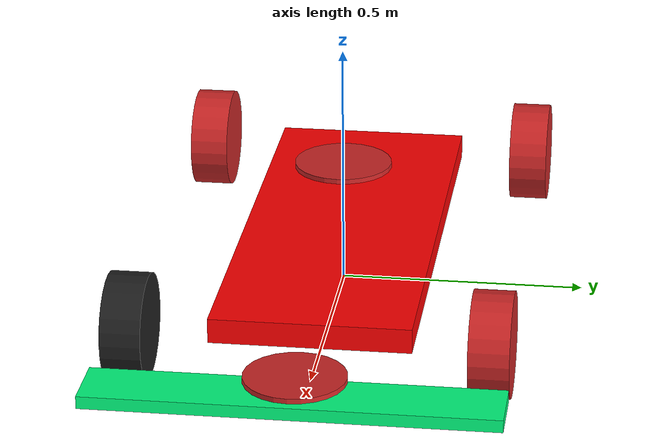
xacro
<?xml version="1.0"?>
<robot name="ap4_gokart" xmlns:xacro="http://ros.org/wiki/xacro">

 <!-- Include chassi body, wheel and steering information urdf file -->
 <!-- Parameters for the gokart chassis can be changed inside this file -->
   <xacro:include filename="$(find autonomous_platform_robot_description_pkg)/src/description/simple_digital_twin.urdf.xacro"/>

  <!-- Ackermann steering control for simulation of AP4 -->

 <xacro:include filename="control_simple_digital_twin.xacro"/>
  <xacro:include filename="lidar.xacro"/>
  <xacro:include filename="imu.xacro"/>

  <!-- TODO add sensors and such here from seperate files-->

</robot>

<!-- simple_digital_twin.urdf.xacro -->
<robot xmlns:xacro="http://ros.org/wiki/xacro" name="ackermann_steering_robot">
  <xacro:include filename="$(find autonomous_platform_robot_description_pkg)/src/description/inertia_macros.xacro"/>

  <link name="base_footprint">
  </link>

  <material name="custom_red">
    <ambient rgba="1.0 0.0 0.0 1.0"/> <!-- Red color -->
    <diffuse rgba="1.0 0.0 0.0 1.0"/> <!-- Red color -->
    <specular rgba="0.1 0.1 0.1 1.0"/> <!-- Slight reflection -->
  </material>

   <!-- Define robot constants -->
  <xacro:property name="base_width" value="0.4"/>
  <xacro:property name="base_length" value="1.02"/>
  <xacro:property name="base_height" value="0.05"/>

  <!-- params -->
  <xacro:property name="wheel_radius" value="0.105"/>
  <xacro:property name="wheel_width" value="0.080"/>
  <xacro:property name="y_offset" value="${base_width/2 + 0.155}"/>

  <!-- Gokart front wing parameters - As of now simplified to a slab -->
  <xacro:property name="gokart_frontwing_width" value="0.8"/>
  <xacro:property name="gokart_frontwing_length" value="0.125"/>
  <xacro:property name="gokart_frontwing_height" value="0.025"/>
  <xacro:property name="gokart_frontwing_body_xoff" value="0.16"/>

  <!-- weights -->
  <xacro:property name="wheel_weight" value="1.5"/>
  <xacro:property name="chassi_body_weight" value="50.0"/>
  <xacro:property name="frontwing_weight" value="20.0"/>

  <!-- Base link -->
  <link name="base_link">
    <visual>
      <geometry>
        <box size="${base_length} ${base_width} ${base_height}"/>
      </geometry>
      <material name="Red">
          <color rgba="1.0 0.0 0.0 1.0"/>
        </material>
    </visual>

    <collision>
      <geometry>
        <box size="1 0.5 0.1"/>
      </geometry>
    </collision>

    <xacro:inertial_box mass="${chassi_body_weight}" x="1" y="0.5" z="0.1">
      <origin xyz="0.0 0.0 0.0" rpy="0.0 0.0 0.0"/>
    </xacro:inertial_box>

  </link>

  <joint name="base_joint" type="fixed">
    <parent link="base_footprint"/>
    <child link="base_link"/>
    <origin xyz="0.0 0.0 0.1" rpy="0 0 0"/>
  </joint>

  <!-- Steering joints -->
  <joint name="left_steering_joint" type="revolute">
    <parent link="base_link"/>
    <child link="left_swivel"/>
    <origin xyz="0.5 ${y_offset} 0.0" rpy="0 0  0"/>
    <axis xyz="0 0 1"/> <!-- Rotate around the Y-axis (steering axis) -->
    <limit effort="100" lower="${-pi/5}" upper="${pi/5}" velocity="5" />
  </joint>

  <joint name="right_steering_joint" type="revolute">
    <parent link="base_link"/>
    <child link="right_swivel"/>
    <origin xyz="0.5 ${-y_offset} 0.0" rpy="0 0 0"/>
    <axis xyz="0 0 1"/> <!-- Rotate around the Y-axis (steering axis) -->
    <limit effort="100" lower="${-pi/5}" upper="${pi/5}" velocity="5" />
  </joint>

   <!-- front wheel rotating joints -->
  <joint name="left_steering_rotating_joint" type="continuous">
    <parent link="left_swivel"/>
    <child link="left_wheel_steering"/>
    <origin xyz="0.0 0.0 0.0" rpy="0 0 0"/>
    <axis xyz="0 1 0"/> <!-- Rotate around the Y-axis (drive axis) -->
    <dynamics friction="0.1" damping="0.5" />
    <limit lower="${-pi}" upper="${pi}" effort="0.1" velocity="15" />
  </joint>

  <joint name="right_steering_rotating_joint" type="continuous">
    <parent link="right_swivel"/>
    <child link="right_wheel_steering"/>
    <origin xyz="-0.0 0.0 0.0" rpy="0 0 0"/>
    <axis xyz="0 1 0"/> <!-- Rotate around the Y-axis (drive axis) -->
    <dynamics friction="0.1" damping="0.5" />
    <limit lower="${-pi}" upper="${pi}" effort="0.1" velocity="15" />
  </joint>

  <!-- Drive joints -->
  <joint name="left_drive_joint" type="continuous">
    <parent link="base_link"/>
    <child link="left_wheel"/>
    <origin xyz="-0.5 ${y_offset} 0.0" rpy="0 0 0"/>
    <axis xyz="0 1 0"/> <!-- Rotate around the Y-axis (drive axis) -->
    <dynamics friction="0.1" damping="0.5" />
    <limit lower="${-pi}" upper="${pi}" effort="70" velocity="15" />
  </joint>

  <joint name="right_drive_joint" type="continuous">
    <parent link="base_link"/>
    <child link="right_wheel"/>
    <origin xyz="-0.5 ${-y_offset} 0.0" rpy="0 0 0"/>
    <axis xyz="0 1 0"/> <!-- Rotate around the Y-axis (drive axis) -->
    <dynamics friction="0.1" damping="0.5" />
    <limit lower="${-pi}" upper="${pi}" effort="70" velocity="15" />
  </joint>

  <!-- Steering swiwels -->
  <link name="left_swivel">
    <visual>
      <origin xyz="0 0 0" rpy="${pi/2} 0 0"/>
      <geometry>
        <cylinder radius="0.05" length="0.005"/>
      </geometry>
      <material name="custom_red"/>
    </visual>
    <collision>
      <origin xyz="0 0 0" rpy="${pi/2} 0 0"/>
      <geometry>
        <cylinder radius="0.05" length="0.005"/>
      </geometry>
    </collision>
    <xacro:inertial_cylinder mass="${wheel_weight}" length="0.005" radius="0.05">
      <origin xyz="0 0 0" rpy="${pi/2} 0 0"/>
    </xacro:inertial_cylinder>
  </link>

  <link name="right_swivel">
    <visual>
      <origin xyz="0 0 0" rpy="${pi/2} 0 0"/>
      <geometry>
        <cylinder radius="0.05" length="0.005"/>
      </geometry>
      <material name="custom_red"/>
    </visual>
    <collision>
      <origin xyz="0 0 0" rpy="${pi/2} 0 0"/>
      <geometry>
        <cylinder radius="0.05" length="0.005"/>
      </geometry>
    </collision>
    <xacro:inertial_cylinder mass="${wheel_weight}" length="0.005" radius="0.05">
      <origin xyz="0 0 0" rpy="${pi/2} 0 0"/>
    </xacro:inertial_cylinder>
  </link>

  <!-- Steering wheels -->
  <link name="left_wheel_steering">
    <visual>
      <origin xyz="0 0 0" rpy="${pi/2} 0 0"/>
      <geometry>
        <cylinder radius="${wheel_radius}" length="${wheel_width}"/>
      </geometry>
      <material name="custom_red"/>
    </visual>
    <collision>
      <origin xyz="0 0 0" rpy="${pi/2} 0 0"/>
      <geometry>
        <cylinder radius="${wheel_radius}" length="${wheel_width}"/>
      </geometry>
    </collision>
    <xacro:inertial_cylinder mass="${wheel_weight}" length="${wheel_width}" radius="${wheel_radius}">
      <origin xyz="0 0 0" rpy="${pi/2} 0 0"/>
    </xacro:inertial_cylinder>
  </link>

  <link name="right_wheel_steering">
    <visual>
      <origin xyz="0 0 0" rpy="${pi/2} 0 0"/>
      <geometry>
        <cylinder radius="${wheel_radius}" length="${wheel_width}"/>
      </geometry>
    </visual>
    <collision>
      <origin xyz="0 0 0" rpy="${pi/2} 0 0"/>
      <geometry>
        <cylinder radius="${wheel_radius}" length="${wheel_width}"/>
      </geometry>
    </collision>
    <xacro:inertial_cylinder mass="${wheel_weight}" length="${wheel_width}" radius="${wheel_radius}">
      <origin xyz="0 0 0" rpy="${pi/2} 0 0"/>
    </xacro:inertial_cylinder>

    <gazebo reference="right_wheel_steering">
      <material> Gazebo/Black </material>
    </gazebo>
  </link>

  <!-- Driving wheels -->
  <link name="left_wheel">
    <visual>
      <origin xyz="0 0 0" rpy="${pi/2} 0 0"/>
      <geometry>
        <cylinder radius="${wheel_radius}" length="${wheel_width}"/>
      </geometry>
      <material name="custom_red"/>
    </visual>
    <collision>
      <origin xyz="0 0 0" rpy="${pi/2} 0 0"/>
      <geometry>
        <cylinder radius="${wheel_radius}" length="${wheel_width}"/>
      </geometry>
    </collision>
    <xacro:inertial_cylinder mass="${wheel_weight}" length="${wheel_width}" radius="${wheel_radius}">
      <origin xyz="0 0 0" rpy="${pi/2} 0 0"/>
    </xacro:inertial_cylinder>
  </link>

  <link name="right_wheel">
    <visual>
      <origin xyz="0 0 0" rpy="${pi/2} 0 0"/>
      <geometry>
        <cylinder radius="${wheel_radius}" length="${wheel_width}"/>
      </geometry>
      <material name="custom_red"/>
    </visual>
    <collision>
      <origin xyz="0 0 0" rpy="${pi/2} 0 0"/>
      <geometry>
        <cylinder radius="${wheel_radius}" length="${wheel_width}"/>
      </geometry>
    </collision>
    <xacro:inertial_cylinder mass="${wheel_weight}" length="${wheel_width}" radius="${wheel_radius}">
      <origin xyz="0 0 0" rpy="${pi/2} 0 0"/>
    </xacro:inertial_cylinder>
  </link>

  <!-- Create frontwing link on which one would like to mount future sensors -->
  <link name="gokart_frontwing_link">
      <visual>
        <origin xyz="${gokart_frontwing_length/2} 0 0" rpy="0 0 0"/>
        <geometry>
             <box size="${gokart_frontwing_length} ${gokart_frontwing_width} ${gokart_frontwing_height}"/>
        </geometry>
        <material name="Green">
          <color rgba="0 1.0 0.5 1.0"/>
        </material>
      </visual>

      <collision>
        <origin xyz="${gokart_frontwing_length/2} 0 0" rpy="0 0 0"/>
        <geometry>
             <box size="${gokart_frontwing_length} ${gokart_frontwing_width} ${gokart_frontwing_height}"/>
        </geometry>
      </collision>

      <xacro:inertial_box mass="${frontwing_weight}" x="${gokart_frontwing_length}" y="${gokart_frontwing_width}" z="${gokart_frontwing_height}">
      <origin xyz="0.0 0.0 0.0" rpy="0.0 0.0 0.0"/>
    </xacro:inertial_box>
    </link>

  <!-- Create frontwing joint, mount the frontwing to the gokart body with a fixed joint -->
  <joint name="frontwing_joint" type="fixed">
      <parent link="base_link"/>
      <child link="gokart_frontwing_link"/>
      <origin xyz="${base_length/2+gokart_frontwing_body_xoff} 0 ${-gokart_frontwing_height}" rpy="0 0 0"/>
      <axis xyz="1 0 0"/>
  </joint>

</robot>

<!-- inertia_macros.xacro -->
<robot xmlns:xacro="http://ros.org/wiki/xacro">

 <!-- Taken from https://github.com/joshnewans/articubot_one/blob/d5aa5e9bc9039073c0d8fd7fe426e170be79c087/description/inertial_macros.xacro -->

<!-- Specify some standard inertial calculations https://en.wikipedia.org/wiki/List_of_moments_of_inertia -->
    <!-- These make use of xacro's mathematical functionality -->

    <xacro:macro name="inertial_sphere" params="mass radius *origin">
        <inertial>
            <xacro:insert_block name="origin"/>
            <mass value="${mass}" />
            <inertia ixx="${(2/5) * mass * (radius*radius)}" ixy="0.0" ixz="0.0"
                    iyy="${(2/5) * mass * (radius*radius)}" iyz="0.0"
                    izz="${(2/5) * mass * (radius*radius)}" />
        </inertial>
    </xacro:macro>

    <xacro:macro name="inertial_box" params="mass x y z *origin">
        <inertial>
            <xacro:insert_block name="origin"/>
            <mass value="${mass}" />
            <inertia ixx="${(1/12) * mass * (y*y+z*z)}" ixy="0.0" ixz="0.0"
                    iyy="${(1/12) * mass * (x*x+z*z)}" iyz="0.0"
                    izz="${(1/12) * mass * (x*x+y*y)}" />
        </inertial>
    </xacro:macro>

    <xacro:macro name="inertial_cylinder" params="mass length radius *origin">
        <inertial>
            <xacro:insert_block name="origin"/>
            <mass value="${mass}" />
            <inertia ixx="${(1/12) * mass * (3*radius*radius + length*length)}" ixy="0.0" ixz="0.0"
                    iyy="${(1/12) * mass * (3*radius*radius + length*length)}" iyz="0.0"
                    izz="${(1/2) * mass * (radius*radius)}" />
        </inertial>
    </xacro:macro>

</robot>

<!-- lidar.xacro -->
<robot xmlns:xacro="http://www.ros.org/wiki/xacro">

    <xacro:property name="lidar_length" value="0.01"/>
    <xacro:property name="lidar_radius" value="0.1"/>

    <link name="lidar_link">
    <visual>
      <geometry>
        <cylinder radius="${lidar_radius}" length="${lidar_length}"/>
      </geometry>
    </visual>

    <collision>
      <geometry>
        <cylinder radius="${lidar_radius}" length="${lidar_length}"/>
      </geometry>
    </collision>

    <xacro:inertial_cylinder mass="0.1" length="${lidar_length}" radius="${lidar_radius}" >
        <origin xyz="0 0 0" rpy="0 0 0"/>
      </xacro:inertial_cylinder>

  </link>

    <joint name="base_lidar_joint" type="fixed">
        <parent link="base_link"/>
        <child link="lidar_link"/>
        <origin xyz="0.701 0 ${lidar_length/2.0}" rpy="0 0 0"/>
    </joint>

    <gazebo reference="lidar_link">
        <material>Gazebo/Red</material>
        <color rgba="1.0 0.0 0.0 1.0"/>
        <sensor name="lidar_sensor" type="gpu_lidar">
            <pose>0 0 0 0 0 0</pose>
            <visualize>true</visualize>
            <update_rate>10.0</update_rate>
            <lidar>
                <scan>
                    <horizontal>
                        <samples>180</samples>
                        <min_angle>-1.771</min_angle>
                        <max_angle>1.771</max_angle>
                    </horizontal>
                </scan>
                <range>
                    <min>1.0</min>
                    <max>12</max>
                </range>
            </lidar>

            <topic>scan</topic>

            <gz_frame_id>lidar_link</gz_frame_id>
        </sensor>
    </gazebo>
</robot>

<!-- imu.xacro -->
<robot xmlns:xacro="http://www.ros.org/wiki/xacro">

    <xacro:property name="lidar_length" value="0.01"/>
    <xacro:property name="lidar_radius" value="0.1"/>

    <link name="imu_link">
    <visual>
      <geometry>
        <cylinder radius="${lidar_radius}" length="${lidar_length}"/>
      </geometry>
    </visual>

    <collision>
      <geometry>
        <cylinder radius="${lidar_radius}" length="${lidar_length}"/>
      </geometry>
    </collision>

    <xacro:inertial_cylinder mass="0.1" length="${lidar_length}" radius="${lidar_radius}" >
        <origin xyz="0 0 0" rpy="0 0 0"/>
      </xacro:inertial_cylinder>

  </link>

    <joint name="base_imu_joint" type="fixed">
        <parent link="base_link"/>
        <child link="imu_link"/>
        <origin xyz="0 0 ${0.1+0.05+lidar_length/2.0}" rpy="0 0 0"/>
    </joint>

    <gazebo reference="imu_link">
        <material>Gazebo/Red</material>
        <color rgba="1.0 0.0 0.0 1.0"/>
          <sensor name="imu_sensor" type="imu">
            <always_on>true</always_on>
            <update_rate>10</update_rate>
            <visualize>true</visualize>
            <topic>/imu</topic>
            <gz_frame_id>imu_link</gz_frame_id>
            <imu>
              <angular_velocity>
                <x>
                  <noise type="gaussian">
                    <mean>0.0</mean>
                    <stddev>2e-4</stddev>
                    <bias_mean>0.0000075</bias_mean>
                    <bias_stddev>0.0000008</bias_stddev>
                  </noise>
                </x>
                <y>
                  <noise type="gaussian">
                    <mean>0.0</mean>
                    <stddev>2e-4</stddev>
                    <bias_mean>0.0000075</bias_mean>
                    <bias_stddev>0.0000008</bias_stddev>
                  </noise>
                </y>
                <z>
                  <noise type="gaussian">
                    <mean>0.0</mean>
                    <stddev>2e-4</stddev>
                    <bias_mean>0.0000075</bias_mean>
                    <bias_stddev>0.0000008</bias_stddev>
                  </noise>
                </z>
              </angular_velocity>
              <linear_acceleration>
                <x>
                  <noise type="gaussian">
                    <mean>0.0</mean>
                    <stddev>1.7e-2</stddev>
                    <bias_mean>0.1</bias_mean>
                    <bias_stddev>0.001</bias_stddev>
                  </noise>
                </x>
                <y>
                  <noise type="gaussian">
                    <mean>0.0</mean>
                    <stddev>1.7e-2</stddev>
                    <bias_mean>0.1</bias_mean>
                    <bias_stddev>0.001</bias_stddev>
                  </noise>
                </y>
                <z>
                  <noise type="gaussian">
                    <mean>0.0</mean>
                    <stddev>1.7e-2</stddev>
                    <bias_mean>0.1</bias_mean>
                    <bias_stddev>0.001</bias_stddev>
                  </noise>
                </z>
              </linear_acceleration>
            </imu>
          </sensor>
    </gazebo>
</robot>
